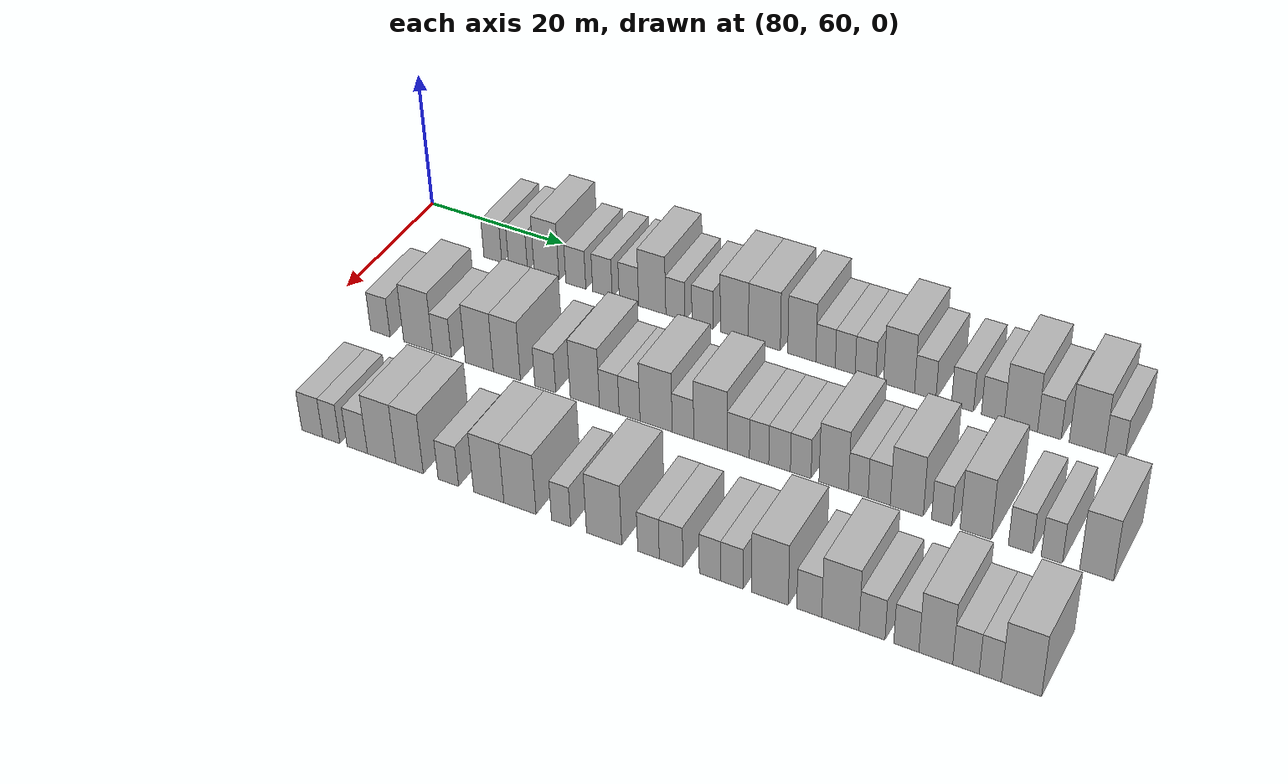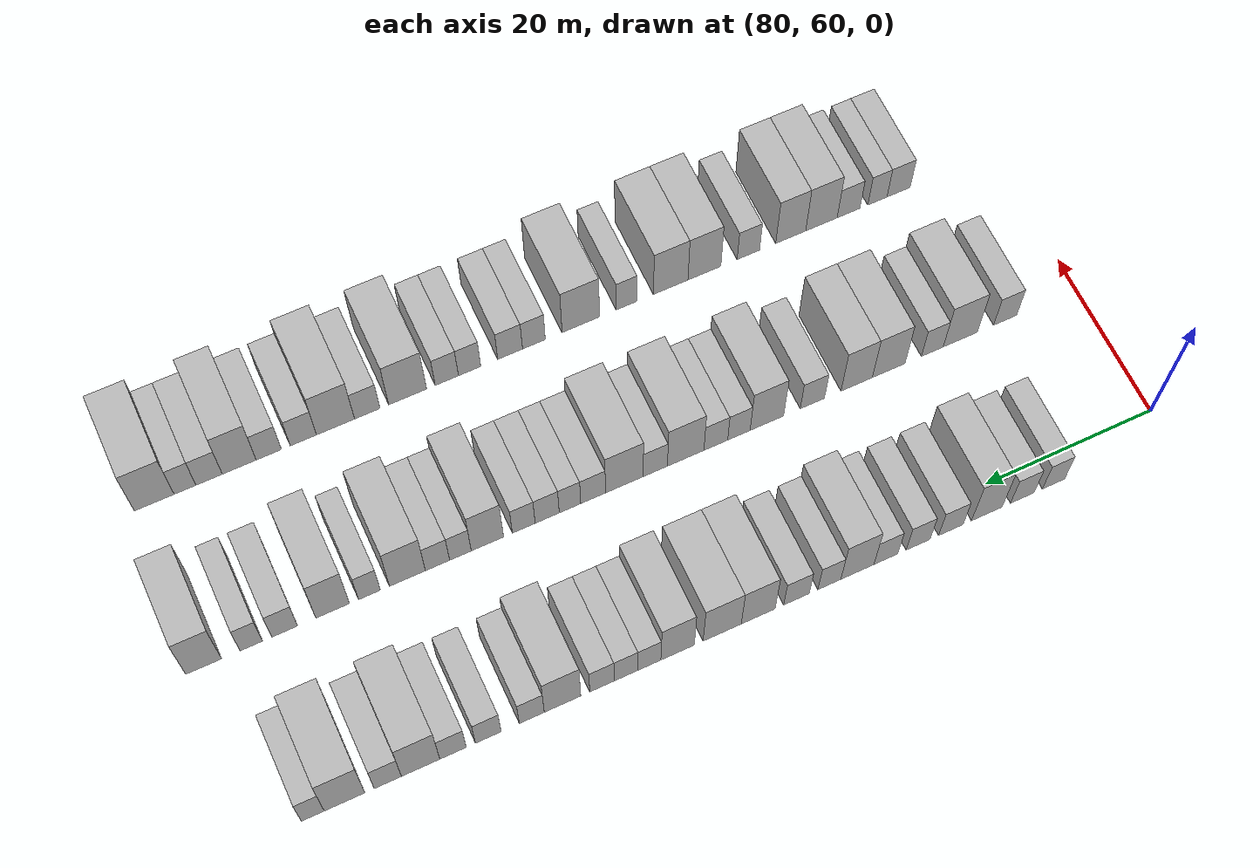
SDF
<sdf version="1.6">
 <world name="default">
  <model name="building_641">
   <static>1</static>
   <pose>82.0000 73.6102 0 0.000000 0.000000 0.000000</pose>
   <link name="link">
    <pose>0 0 3.00 0 0 0</pose>
    <collision name="collision"><geometry><box><size>10.0000 2.6775 6.0000</size></box></geometry></collision>
    <visual name="visual">
     <cast_shadows>0</cast_shadows>
     <geometry><box><size>10.0000 2.6775 6.0000</size></box></geometry>
     <material>
      <script>
       <uri>model://HANNAS_wall/materials/scripts</uri>
       <uri>model://HANNAS_wall/materials/textures</uri>
       <name>vrc/HANNAS_wall</name>
      </script>
     </material>
    </visual>
   </link>
  </model>
  <model name="building_642">
   <static>1</static>
   <pose>82.0000 77.3607 0 0.000000 0.000000 0.000000</pose>
   <link name="link">
    <pose>0 0 3.00 0 0 0</pose>
    <collision name="collision"><geometry><box><size>10.0000 2.8235 6.0000</size></box></geometry></collision>
    <visual name="visual">
     <cast_shadows>0</cast_shadows>
     <geometry><box><size>10.0000 2.8235 6.0000</size></box></geometry>
     <material>
      <script>
       <uri>model://HANNAS_wall/materials/scripts</uri>
       <uri>model://HANNAS_wall/materials/textures</uri>
       <name>vrc/HANNAS_wall</name>
      </script>
     </material>
    </visual>
   </link>
  </model>
  <model name="building_643">
   <static>1</static>
   <pose>82.0000 81.5987 0 0.000000 0.000000 0.000000</pose>
   <link name="link">
    <pose>0 0 4.50 0 0 0</pose>
    <collision name="collision"><geometry><box><size>10.0000 3.6525 9.0000</size></box></geometry></collision>
    <visual name="visual">
     <cast_shadows>0</cast_shadows>
     <geometry><box><size>10.0000 3.6525 9.0000</size></box></geometry>
     <material>
      <script>
       <uri>model://HANNAS_wall/materials/scripts</uri>
       <uri>model://HANNAS_wall/materials/textures</uri>
       <name>vrc/HANNAS_wall</name>
      </script>
     </material>
    </visual>
   </link>
  </model>
  <model name="building_644">
   <static>1</static>
   <pose>82.0000 85.8747 0 0.000000 0.000000 0.000000</pose>
   <link name="link">
    <pose>0 0 3.00 0 0 0</pose>
    <collision name="collision"><geometry><box><size>10.0000 2.8995 6.0000</size></box></geometry></collision>
    <visual name="visual">
     <cast_shadows>0</cast_shadows>
     <geometry><box><size>10.0000 2.8995 6.0000</size></box></geometry>
     <material>
      <script>
       <uri>model://HANNAS_wall/materials/scripts</uri>
       <uri>model://HANNAS_wall/materials/textures</uri>
       <name>vrc/HANNAS_wall</name>
      </script>
     </material>
    </visual>
   </link>
  </model>
  <model name="building_645">
   <static>1</static>
   <pose>82.0000 89.7336 0 0.000000 0.000000 0.000000</pose>
   <link name="link">
    <pose>0 0 3.00 0 0 0</pose>
    <collision name="collision"><geometry><box><size>10.0000 2.8182 6.0000</size></box></geometry></collision>
    <visual name="visual">
     <cast_shadows>0</cast_shadows>
     <geometry><box><size>10.0000 2.8182 6.0000</size></box></geometry>
     <material>
      <script>
       <uri>model://HANNAS_wall/materials/scripts</uri>
       <uri>model://HANNAS_wall/materials/textures</uri>
       <name>vrc/HANNAS_wall</name>
      </script>
     </material>
    </visual>
   </link>
  </model>
  <model name="building_646">
   <static>1</static>
   <pose>82.0000 93.5314 0 0.000000 0.000000 0.000000</pose>
   <link name="link">
    <pose>0 0 3.00 0 0 0</pose>
    <collision name="collision"><geometry><box><size>10.0000 2.7775 6.0000</size></box></geometry></collision>
    <visual name="visual">
     <cast_shadows>0</cast_shadows>
     <geometry><box><size>10.0000 2.7775 6.0000</size></box></geometry>
     <material>
      <script>
       <uri>model://HANNAS_wall/materials/scripts</uri>
       <uri>model://HANNAS_wall/materials/textures</uri>
       <name>vrc/HANNAS_wall</name>
      </script>
     </material>
    </visual>
   </link>
  </model>
  <model name="building_647">
   <static>1</static>
   <pose>82.0000 96.8436 0 0.000000 0.000000 0.000000</pose>
   <link name="link">
    <pose>0 0 4.50 0 0 0</pose>
    <collision name="collision"><geometry><box><size>10.0000 3.8470 9.0000</size></box></geometry></collision>
    <visual name="visual">
     <cast_shadows>0</cast_shadows>
     <geometry><box><size>10.0000 3.8470 9.0000</size></box></geometry>
     <material>
      <script>
       <uri>model://HANNAS_wall/materials/scripts</uri>
       <uri>model://HANNAS_wall/materials/textures</uri>
       <name>vrc/HANNAS_wall</name>
      </script>
     </material>
    </visual>
   </link>
  </model>
  <model name="building_648">
   <static>1</static>
   <pose>82.0000 100.0966 0 0.000000 0.000000 0.000000</pose>
   <link name="link">
    <pose>0 0 3.00 0 0 0</pose>
    <collision name="collision"><geometry><box><size>10.0000 2.6588 6.0000</size></box></geometry></collision>
    <visual name="visual">
     <cast_shadows>0</cast_shadows>
     <geometry><box><size>10.0000 2.6588 6.0000</size></box></geometry>
     <material>
      <script>
       <uri>model://HANNAS_wall/materials/scripts</uri>
       <uri>model://HANNAS_wall/materials/textures</uri>
       <name>vrc/HANNAS_wall</name>
      </script>
     </material>
    </visual>
   </link>
  </model>
  <model name="building_649">
   <static>1</static>
   <pose>82.0000 103.8937 0 0.000000 0.000000 0.000000</pose>
   <link name="link">
    <pose>0 0 3.00 0 0 0</pose>
    <collision name="collision"><geometry><box><size>10.0000 2.9354 6.0000</size></box></geometry></collision>
    <visual name="visual">
     <cast_shadows>0</cast_shadows>
     <geometry><box><size>10.0000 2.9354 6.0000</size></box></geometry>
     <material>
      <script>
       <uri>model://HANNAS_wall/materials/scripts</uri>
       <uri>model://HANNAS_wall/materials/textures</uri>
       <name>vrc/HANNAS_wall</name>
      </script>
     </material>
    </visual>
   </link>
  </model>
  <model name="building_650">
   <static>1</static>
   <pose>82.0000 108.2940 0 0.000000 0.000000 0.000000</pose>
   <link name="link">
    <pose>0 0 4.50 0 0 0</pose>
    <collision name="collision"><geometry><box><size>10.0000 3.8652 9.0000</size></box></geometry></collision>
    <visual name="visual">
     <cast_shadows>0</cast_shadows>
     <geometry><box><size>10.0000 3.8652 9.0000</size></box></geometry>
     <material>
      <script>
       <uri>model://HANNAS_wall/materials/scripts</uri>
       <uri>model://HANNAS_wall/materials/textures</uri>
       <name>vrc/HANNAS_wall</name>
      </script>
     </material>
    </visual>
   </link>
  </model>
  <model name="building_651">
   <static>1</static>
   <pose>82.0000 112.3958 0 0.000000 0.000000 0.000000</pose>
   <link name="link">
    <pose>0 0 4.50 0 0 0</pose>
    <collision name="collision"><geometry><box><size>10.0000 4.3384 9.0000</size></box></geometry></collision>
    <visual name="visual">
     <cast_shadows>0</cast_shadows>
     <geometry><box><size>10.0000 4.3384 9.0000</size></box></geometry>
     <material>
      <script>
       <uri>model://HANNAS_wall/materials/scripts</uri>
       <uri>model://HANNAS_wall/materials/textures</uri>
       <name>vrc/HANNAS_wall</name>
      </script>
     </material>
    </visual>
   </link>
  </model>
  <model name="building_652">
   <static>1</static>
   <pose>82.0000 117.4512 0 0.000000 0.000000 0.000000</pose>
   <link name="link">
    <pose>0 0 4.50 0 0 0</pose>
    <collision name="collision"><geometry><box><size>10.0000 3.7724 9.0000</size></box></geometry></collision>
    <visual name="visual">
     <cast_shadows>0</cast_shadows>
     <geometry><box><size>10.0000 3.7724 9.0000</size></box></geometry>
     <material>
      <script>
       <uri>model://HANNAS_wall/materials/scripts</uri>
       <uri>model://HANNAS_wall/materials/textures</uri>
       <name>vrc/HANNAS_wall</name>
      </script>
     </material>
    </visual>
   </link>
  </model>
  <model name="building_653">
   <static>1</static>
   <pose>82.0000 120.6307 0 0.000000 0.000000 0.000000</pose>
   <link name="link">
    <pose>0 0 3.00 0 0 0</pose>
    <collision name="collision"><geometry><box><size>10.0000 2.5866 6.0000</size></box></geometry></collision>
    <visual name="visual">
     <cast_shadows>0</cast_shadows>
     <geometry><box><size>10.0000 2.5866 6.0000</size></box></geometry>
     <material>
      <script>
       <uri>model://HANNAS_wall/materials/scripts</uri>
       <uri>model://HANNAS_wall/materials/textures</uri>
       <name>vrc/HANNAS_wall</name>
      </script>
     </material>
    </visual>
   </link>
  </model>
  <model name="building_654">
   <static>1</static>
   <pose>82.0000 123.2401 0 0.000000 0.000000 0.000000</pose>
   <link name="link">
    <pose>0 0 3.00 0 0 0</pose>
    <collision name="collision"><geometry><box><size>10.0000 2.6322 6.0000</size></box></geometry></collision>
    <visual name="visual">
     <cast_shadows>0</cast_shadows>
     <geometry><box><size>10.0000 2.6322 6.0000</size></box></geometry>
     <material>
      <script>
       <uri>model://HANNAS_wall/materials/scripts</uri>
       <uri>model://HANNAS_wall/materials/textures</uri>
       <name>vrc/HANNAS_wall</name>
      </script>
     </material>
    </visual>
   </link>
  </model>
  <model name="building_655">
   <static>1</static>
   <pose>82.0000 125.9217 0 0.000000 0.000000 0.000000</pose>
   <link name="link">
    <pose>0 0 3.00 0 0 0</pose>
    <collision name="collision"><geometry><box><size>10.0000 2.7310 6.0000</size></box></geometry></collision>
    <visual name="visual">
     <cast_shadows>0</cast_shadows>
     <geometry><box><size>10.0000 2.7310 6.0000</size></box></geometry>
     <material>
      <script>
       <uri>model://HANNAS_wall/materials/scripts</uri>
       <uri>model://HANNAS_wall/materials/textures</uri>
       <name>vrc/HANNAS_wall</name>
      </script>
     </material>
    </visual>
   </link>
  </model>
  <model name="building_656">
   <static>1</static>
   <pose>82.0000 130.3047 0 0.000000 0.000000 0.000000</pose>
   <link name="link">
    <pose>0 0 4.50 0 0 0</pose>
    <collision name="collision"><geometry><box><size>10.0000 4.0351 9.0000</size></box></geometry></collision>
    <visual name="visual">
     <cast_shadows>0</cast_shadows>
     <geometry><box><size>10.0000 4.0351 9.0000</size></box></geometry>
     <material>
      <script>
       <uri>model://HANNAS_wall/materials/scripts</uri>
       <uri>model://HANNAS_wall/materials/textures</uri>
       <name>vrc/HANNAS_wall</name>
      </script>
     </material>
    </visual>
   </link>
  </model>
  <model name="building_657">
   <static>1</static>
   <pose>82.0000 133.6952 0 0.000000 0.000000 0.000000</pose>
   <link name="link">
    <pose>0 0 3.00 0 0 0</pose>
    <collision name="collision"><geometry><box><size>10.0000 2.7457 6.0000</size></box></geometry></collision>
    <visual name="visual">
     <cast_shadows>0</cast_shadows>
     <geometry><box><size>10.0000 2.7457 6.0000</size></box></geometry>
     <material>
      <script>
       <uri>model://HANNAS_wall/materials/scripts</uri>
       <uri>model://HANNAS_wall/materials/textures</uri>
       <name>vrc/HANNAS_wall</name>
      </script>
     </material>
    </visual>
   </link>
  </model>
  <model name="building_658">
   <static>1</static>
   <pose>82.0000 138.4695 0 0.000000 0.000000 0.000000</pose>
   <link name="link">
    <pose>0 0 3.00 0 0 0</pose>
    <collision name="collision"><geometry><box><size>10.0000 2.8030 6.0000</size></box></geometry></collision>
    <visual name="visual">
     <cast_shadows>0</cast_shadows>
     <geometry><box><size>10.0000 2.8030 6.0000</size></box></geometry>
     <material>
      <script>
       <uri>model://HANNAS_wall/materials/scripts</uri>
       <uri>model://HANNAS_wall/materials/textures</uri>
       <name>vrc/HANNAS_wall</name>
      </script>
     </material>
    </visual>
   </link>
  </model>
  <model name="building_659">
   <static>1</static>
   <pose>82.0000 142.3086 0 0.000000 0.000000 0.000000</pose>
   <link name="link">
    <pose>0 0 3.00 0 0 0</pose>
    <collision name="collision"><geometry><box><size>10.0000 2.8752 6.0000</size></box></geometry></collision>
    <visual name="visual">
     <cast_shadows>0</cast_shadows>
     <geometry><box><size>10.0000 2.8752 6.0000</size></box></geometry>
     <material>
      <script>
       <uri>model://HANNAS_wall/materials/scripts</uri>
       <uri>model://HANNAS_wall/materials/textures</uri>
       <name>vrc/HANNAS_wall</name>
      </script>
     </material>
    </visual>
   </link>
  </model>
  <model name="building_660">
   <static>1</static>
   <pose>82.0000 145.8226 0 0.000000 0.000000 0.000000</pose>
   <link name="link">
    <pose>0 0 4.50 0 0 0</pose>
    <collision name="collision"><geometry><box><size>10.0000 4.1527 9.0000</size></box></geometry></collision>
    <visual name="visual">
     <cast_shadows>0</cast_shadows>
     <geometry><box><size>10.0000 4.1527 9.0000</size></box></geometry>
     <material>
      <script>
       <uri>model://HANNAS_wall/materials/scripts</uri>
       <uri>model://HANNAS_wall/materials/textures</uri>
       <name>vrc/HANNAS_wall</name>
      </script>
     </material>
    </visual>
   </link>
  </model>
  <model name="building_661">
   <static>1</static>
   <pose>82.0000 149.3579 0 0.000000 0.000000 0.000000</pose>
   <link name="link">
    <pose>0 0 3.00 0 0 0</pose>
    <collision name="collision"><geometry><box><size>10.0000 2.9180 6.0000</size></box></geometry></collision>
    <visual name="visual">
     <cast_shadows>0</cast_shadows>
     <geometry><box><size>10.0000 2.9180 6.0000</size></box></geometry>
     <material>
      <script>
       <uri>model://HANNAS_wall/materials/scripts</uri>
       <uri>model://HANNAS_wall/materials/textures</uri>
       <name>vrc/HANNAS_wall</name>
      </script>
     </material>
    </visual>
   </link>
  </model>
  <model name="building_662">
   <static>1</static>
   <pose>82.0000 153.9848 0 0.000000 0.000000 0.000000</pose>
   <link name="link">
    <pose>0 0 4.50 0 0 0</pose>
    <collision name="collision"><geometry><box><size>10.0000 4.3357 9.0000</size></box></geometry></collision>
    <visual name="visual">
     <cast_shadows>0</cast_shadows>
     <geometry><box><size>10.0000 4.3357 9.0000</size></box></geometry>
     <material>
      <script>
       <uri>model://HANNAS_wall/materials/scripts</uri>
       <uri>model://HANNAS_wall/materials/textures</uri>
       <name>vrc/HANNAS_wall</name>
      </script>
     </material>
    </visual>
   </link>
  </model>
  <model name="building_663">
   <static>1</static>
   <pose>82.0000 157.3664 0 0.000000 0.000000 0.000000</pose>
   <link name="link">
    <pose>0 0 3.00 0 0 0</pose>
    <collision name="collision"><geometry><box><size>10.0000 2.4275 6.0000</size></box></geometry></collision>
    <visual name="visual">
     <cast_shadows>0</cast_shadows>
     <geometry><box><size>10.0000 2.4275 6.0000</size></box></geometry>
     <material>
      <script>
       <uri>model://HANNAS_wall/materials/scripts</uri>
       <uri>model://HANNAS_wall/materials/textures</uri>
       <name>vrc/HANNAS_wall</name>
      </script>
     </material>
    </visual>
   </link>
  </model>
  <model name="building_814">
   <static>1</static>
   <pose>101.0000 68.9157 0 0.000000 0.000000 0.000000</pose>
   <link name="link">
    <pose>0 0 3.00 0 0 0</pose>
    <collision name="collision"><geometry><box><size>10.0000 2.8502 6.0000</size></box></geometry></collision>
    <visual name="visual">
     <cast_shadows>0</cast_shadows>
     <geometry><box><size>10.0000 2.8502 6.0000</size></box></geometry>
     <material>
      <script>
       <uri>model://HANNAS_wall/materials/scripts</uri>
       <uri>model://HANNAS_wall/materials/textures</uri>
       <name>vrc/HANNAS_wall</name>
      </script>
     </material>
    </visual>
   </link>
  </model>
  <model name="building_815">
   <static>1</static>
   <pose>101.0000 74.4452 0 0.000000 0.000000 0.000000</pose>
   <link name="link">
    <pose>0 0 4.50 0 0 0</pose>
    <collision name="collision"><geometry><box><size>10.0000 4.2087 9.0000</size></box></geometry></collision>
    <visual name="visual">
     <cast_shadows>0</cast_shadows>
     <geometry><box><size>10.0000 4.2087 9.0000</size></box></geometry>
     <material>
      <script>
       <uri>model://HANNAS_wall/materials/scripts</uri>
       <uri>model://HANNAS_wall/materials/textures</uri>
       <name>vrc/HANNAS_wall</name>
      </script>
     </material>
    </visual>
   </link>
  </model>
  <model name="building_816">
   <static>1</static>
   <pose>101.0000 77.8859 0 0.000000 0.000000 0.000000</pose>
   <link name="link">
    <pose>0 0 3.00 0 0 0</pose>
    <collision name="collision"><geometry><box><size>10.0000 2.6728 6.0000</size></box></geometry></collision>
    <visual name="visual">
     <cast_shadows>0</cast_shadows>
     <geometry><box><size>10.0000 2.6728 6.0000</size></box></geometry>
     <material>
      <script>
       <uri>model://HANNAS_wall/materials/scripts</uri>
       <uri>model://HANNAS_wall/materials/textures</uri>
       <name>vrc/HANNAS_wall</name>
      </script>
     </material>
    </visual>
   </link>
  </model>
  <model name="building_817">
   <static>1</static>
   <pose>101.0000 83.2044 0 0.000000 0.000000 0.000000</pose>
   <link name="link">
    <pose>0 0 4.50 0 0 0</pose>
    <collision name="collision"><geometry><box><size>10.0000 3.9642 9.0000</size></box></geometry></collision>
    <visual name="visual">
     <cast_shadows>0</cast_shadows>
     <geometry><box><size>10.0000 3.9642 9.0000</size></box></geometry>
     <material>
      <script>
       <uri>model://HANNAS_wall/materials/scripts</uri>
       <uri>model://HANNAS_wall/materials/textures</uri>
       <name>vrc/HANNAS_wall</name>
      </script>
     </material>
    </visual>
   </link>
  </model>
  <model name="building_818">
   <static>1</static>
   <pose>101.0000 87.0795 0 0.000000 0.000000 0.000000</pose>
   <link name="link">
    <pose>0 0 4.50 0 0 0</pose>
    <collision name="collision"><geometry><box><size>10.0000 3.7862 9.0000</size></box></geometry></collision>
    <visual name="visual">
     <cast_shadows>0</cast_shadows>
     <geometry><box><size>10.0000 3.7862 9.0000</size></box></geometry>
     <material>
      <script>
       <uri>model://HANNAS_wall/materials/scripts</uri>
       <uri>model://HANNAS_wall/materials/textures</uri>
       <name>vrc/HANNAS_wall</name>
      </script>
     </material>
    </visual>
   </link>
  </model>
  <model name="building_819">
   <static>1</static>
   <pose>101.0000 92.4197 0 0.000000 0.000000 0.000000</pose>
   <link name="link">
    <pose>0 0 3.00 0 0 0</pose>
    <collision name="collision"><geometry><box><size>10.0000 2.8941 6.0000</size></box></geometry></collision>
    <visual name="visual">
     <cast_shadows>0</cast_shadows>
     <geometry><box><size>10.0000 2.8941 6.0000</size></box></geometry>
     <material>
      <script>
       <uri>model://HANNAS_wall/materials/scripts</uri>
       <uri>model://HANNAS_wall/materials/textures</uri>
       <name>vrc/HANNAS_wall</name>
      </script>
     </material>
    </visual>
   </link>
  </model>
  <model name="building_820">
   <static>1</static>
   <pose>101.0000 97.8585 0 0.000000 0.000000 0.000000</pose>
   <link name="link">
    <pose>0 0 4.50 0 0 0</pose>
    <collision name="collision"><geometry><box><size>10.0000 3.9836 9.0000</size></box></geometry></collision>
    <visual name="visual">
     <cast_shadows>0</cast_shadows>
     <geometry><box><size>10.0000 3.9836 9.0000</size></box></geometry>
     <material>
      <script>
       <uri>model://HANNAS_wall/materials/scripts</uri>
       <uri>model://HANNAS_wall/materials/textures</uri>
       <name>vrc/HANNAS_wall</name>
      </script>
     </material>
    </visual>
   </link>
  </model>
  <model name="building_821">
   <static>1</static>
   <pose>101.0000 101.1721 0 0.000000 0.000000 0.000000</pose>
   <link name="link">
    <pose>0 0 3.00 0 0 0</pose>
    <collision name="collision"><geometry><box><size>10.0000 2.6436 6.0000</size></box></geometry></collision>
    <visual name="visual">
     <cast_shadows>0</cast_shadows>
     <geometry><box><size>10.0000 2.6436 6.0000</size></box></geometry>
     <material>
      <script>
       <uri>model://HANNAS_wall/materials/scripts</uri>
       <uri>model://HANNAS_wall/materials/textures</uri>
       <name>vrc/HANNAS_wall</name>
      </script>
     </material>
    </visual>
   </link>
  </model>
  <model name="building_822">
   <static>1</static>
   <pose>101.0000 103.8974 0 0.000000 0.000000 0.000000</pose>
   <link name="link">
    <pose>0 0 3.00 0 0 0</pose>
    <collision name="collision"><geometry><box><size>10.0000 2.8071 6.0000</size></box></geometry></collision>
    <visual name="visual">
     <cast_shadows>0</cast_shadows>
     <geometry><box><size>10.0000 2.8071 6.0000</size></box></geometry>
     <material>
      <script>
       <uri>model://HANNAS_wall/materials/scripts</uri>
       <uri>model://HANNAS_wall/materials/textures</uri>
       <name>vrc/HANNAS_wall</name>
      </script>
     </material>
    </visual>
   </link>
  </model>
  <model name="building_823">
   <static>1</static>
   <pose>101.0000 107.4404 0 0.000000 0.000000 0.000000</pose>
   <link name="link">
    <pose>0 0 4.50 0 0 0</pose>
    <collision name="collision"><geometry><box><size>10.0000 4.2789 9.0000</size></box></geometry></collision>
    <visual name="visual">
     <cast_shadows>0</cast_shadows>
     <geometry><box><size>10.0000 4.2789 9.0000</size></box></geometry>
     <material>
      <script>
       <uri>model://HANNAS_wall/materials/scripts</uri>
       <uri>model://HANNAS_wall/materials/textures</uri>
       <name>vrc/HANNAS_wall</name>
      </script>
     </material>
    </visual>
   </link>
  </model>
  <model name="building_824">
   <static>1</static>
   <pose>101.0000 110.9958 0 0.000000 0.000000 0.000000</pose>
   <link name="link">
    <pose>0 0 3.00 0 0 0</pose>
    <collision name="collision"><geometry><box><size>10.0000 2.8319 6.0000</size></box></geometry></collision>
    <visual name="visual">
     <cast_shadows>0</cast_shadows>
     <geometry><box><size>10.0000 2.8319 6.0000</size></box></geometry>
     <material>
      <script>
       <uri>model://HANNAS_wall/materials/scripts</uri>
       <uri>model://HANNAS_wall/materials/textures</uri>
       <name>vrc/HANNAS_wall</name>
      </script>
     </material>
    </visual>
   </link>
  </model>
  <model name="building_825">
   <static>1</static>
   <pose>101.0000 114.5884 0 0.000000 0.000000 0.000000</pose>
   <link name="link">
    <pose>0 0 4.50 0 0 0</pose>
    <collision name="collision"><geometry><box><size>10.0000 4.3533 9.0000</size></box></geometry></collision>
    <visual name="visual">
     <cast_shadows>0</cast_shadows>
     <geometry><box><size>10.0000 4.3533 9.0000</size></box></geometry>
     <material>
      <script>
       <uri>model://HANNAS_wall/materials/scripts</uri>
       <uri>model://HANNAS_wall/materials/textures</uri>
       <name>vrc/HANNAS_wall</name>
      </script>
     </material>
    </visual>
   </link>
  </model>
  <model name="building_826">
   <static>1</static>
   <pose>101.0000 118.1996 0 0.000000 0.000000 0.000000</pose>
   <link name="link">
    <pose>0 0 3.00 0 0 0</pose>
    <collision name="collision"><geometry><box><size>10.0000 2.8692 6.0000</size></box></geometry></collision>
    <visual name="visual">
     <cast_shadows>0</cast_shadows>
     <geometry><box><size>10.0000 2.8692 6.0000</size></box></geometry>
     <material>
      <script>
       <uri>model://HANNAS_wall/materials/scripts</uri>
       <uri>model://HANNAS_wall/materials/textures</uri>
       <name>vrc/HANNAS_wall</name>
      </script>
     </material>
    </visual>
   </link>
  </model>
  <model name="building_827">
   <static>1</static>
   <pose>101.0000 120.8691 0 0.000000 0.000000 0.000000</pose>
   <link name="link">
    <pose>0 0 3.00 0 0 0</pose>
    <collision name="collision"><geometry><box><size>10.0000 2.4698 6.0000</size></box></geometry></collision>
    <visual name="visual">
     <cast_shadows>0</cast_shadows>
     <geometry><box><size>10.0000 2.4698 6.0000</size></box></geometry>
     <material>
      <script>
       <uri>model://HANNAS_wall/materials/scripts</uri>
       <uri>model://HANNAS_wall/materials/textures</uri>
       <name>vrc/HANNAS_wall</name>
      </script>
     </material>
    </visual>
   </link>
  </model>
  <model name="building_828">
   <static>1</static>
   <pose>101.0000 123.4824 0 0.000000 0.000000 0.000000</pose>
   <link name="link">
    <pose>0 0 3.00 0 0 0</pose>
    <collision name="collision"><geometry><box><size>10.0000 2.7567 6.0000</size></box></geometry></collision>
    <visual name="visual">
     <cast_shadows>0</cast_shadows>
     <geometry><box><size>10.0000 2.7567 6.0000</size></box></geometry>
     <material>
      <script>
       <uri>model://HANNAS_wall/materials/scripts</uri>
       <uri>model://HANNAS_wall/materials/textures</uri>
       <name>vrc/HANNAS_wall</name>
      </script>
     </material>
    </visual>
   </link>
  </model>
  <model name="building_829">
   <static>1</static>
   <pose>101.0000 126.1614 0 0.000000 0.000000 0.000000</pose>
   <link name="link">
    <pose>0 0 3.00 0 0 0</pose>
    <collision name="collision"><geometry><box><size>10.0000 2.6012 6.0000</size></box></geometry></collision>
    <visual name="visual">
     <cast_shadows>0</cast_shadows>
     <geometry><box><size>10.0000 2.6012 6.0000</size></box></geometry>
     <material>
      <script>
       <uri>model://HANNAS_wall/materials/scripts</uri>
       <uri>model://HANNAS_wall/materials/textures</uri>
       <name>vrc/HANNAS_wall</name>
      </script>
     </material>
    </visual>
   </link>
  </model>
  <model name="building_830">
   <static>1</static>
   <pose>101.0000 130.2929 0 0.000000 0.000000 0.000000</pose>
   <link name="link">
    <pose>0 0 4.50 0 0 0</pose>
    <collision name="collision"><geometry><box><size>10.0000 3.6618 9.0000</size></box></geometry></collision>
    <visual name="visual">
     <cast_shadows>0</cast_shadows>
     <geometry><box><size>10.0000 3.6618 9.0000</size></box></geometry>
     <material>
      <script>
       <uri>model://HANNAS_wall/materials/scripts</uri>
       <uri>model://HANNAS_wall/materials/textures</uri>
       <name>vrc/HANNAS_wall</name>
      </script>
     </material>
    </visual>
   </link>
  </model>
  <model name="building_831">
   <static>1</static>
   <pose>101.0000 133.3453 0 0.000000 0.000000 0.000000</pose>
   <link name="link">
    <pose>0 0 3.00 0 0 0</pose>
    <collision name="collision"><geometry><box><size>10.0000 2.4430 6.0000</size></box></geometry></collision>
    <visual name="visual">
     <cast_shadows>0</cast_shadows>
     <geometry><box><size>10.0000 2.4430 6.0000</size></box></geometry>
     <material>
      <script>
       <uri>model://HANNAS_wall/materials/scripts</uri>
       <uri>model://HANNAS_wall/materials/textures</uri>
       <name>vrc/HANNAS_wall</name>
      </script>
     </material>
    </visual>
   </link>
  </model>
  <model name="building_832">
   <static>1</static>
   <pose>101.0000 135.9301 0 0.000000 0.000000 0.000000</pose>
   <link name="link">
    <pose>0 0 3.00 0 0 0</pose>
    <collision name="collision"><geometry><box><size>10.0000 2.7266 6.0000</size></box></geometry></collision>
    <visual name="visual">
     <cast_shadows>0</cast_shadows>
     <geometry><box><size>10.0000 2.7266 6.0000</size></box></geometry>
     <material>
      <script>
       <uri>model://HANNAS_wall/materials/scripts</uri>
       <uri>model://HANNAS_wall/materials/textures</uri>
       <name>vrc/HANNAS_wall</name>
      </script>
     </material>
    </visual>
   </link>
  </model>
  <model name="building_833">
   <static>1</static>
   <pose>101.0000 139.3059 0 0.000000 0.000000 0.000000</pose>
   <link name="link">
    <pose>0 0 4.50 0 0 0</pose>
    <collision name="collision"><geometry><box><size>10.0000 4.0250 9.0000</size></box></geometry></collision>
    <visual name="visual">
     <cast_shadows>0</cast_shadows>
     <geometry><box><size>10.0000 4.0250 9.0000</size></box></geometry>
     <material>
      <script>
       <uri>model://HANNAS_wall/materials/scripts</uri>
       <uri>model://HANNAS_wall/materials/textures</uri>
       <name>vrc/HANNAS_wall</name>
      </script>
     </material>
    </visual>
   </link>
  </model>
  <model name="building_834">
   <static>1</static>
   <pose>101.0000 143.5364 0 0.000000 0.000000 0.000000</pose>
   <link name="link">
    <pose>0 0 3.00 0 0 0</pose>
    <collision name="collision"><geometry><box><size>10.0000 2.4361 6.0000</size></box></geometry></collision>
    <visual name="visual">
     <cast_shadows>0</cast_shadows>
     <geometry><box><size>10.0000 2.4361 6.0000</size></box></geometry>
     <material>
      <script>
       <uri>model://HANNAS_wall/materials/scripts</uri>
       <uri>model://HANNAS_wall/materials/textures</uri>
       <name>vrc/HANNAS_wall</name>
      </script>
     </material>
    </visual>
   </link>
  </model>
  <model name="building_835">
   <static>1</static>
   <pose>101.0000 147.6164 0 0.000000 0.000000 0.000000</pose>
   <link name="link">
    <pose>0 0 4.50 0 0 0</pose>
    <collision name="collision"><geometry><box><size>10.0000 3.7240 9.0000</size></box></geometry></collision>
    <visual name="visual">
     <cast_shadows>0</cast_shadows>
     <geometry><box><size>10.0000 3.7240 9.0000</size></box></geometry>
     <material>
      <script>
       <uri>model://HANNAS_wall/materials/scripts</uri>
       <uri>model://HANNAS_wall/materials/textures</uri>
       <name>vrc/HANNAS_wall</name>
      </script>
     </material>
    </visual>
   </link>
  </model>
  <model name="building_836">
   <static>1</static>
   <pose>101.0000 152.8971 0 0.000000 0.000000 0.000000</pose>
   <link name="link">
    <pose>0 0 3.00 0 0 0</pose>
    <collision name="collision"><geometry><box><size>10.0000 2.8374 6.0000</size></box></geometry></collision>
    <visual name="visual">
     <cast_shadows>0</cast_shadows>
     <geometry><box><size>10.0000 2.8374 6.0000</size></box></geometry>
     <material>
      <script>
       <uri>model://HANNAS_wall/materials/scripts</uri>
       <uri>model://HANNAS_wall/materials/textures</uri>
       <name>vrc/HANNAS_wall</name>
      </script>
     </material>
    </visual>
   </link>
  </model>
  <model name="building_837">
   <static>1</static>
   <pose>101.0000 156.5470 0 0.000000 0.000000 0.000000</pose>
   <link name="link">
    <pose>0 0 3.00 0 0 0</pose>
    <collision name="collision"><geometry><box><size>10.0000 2.4623 6.0000</size></box></geometry></collision>
    <visual name="visual">
     <cast_shadows>0</cast_shadows>
     <geometry><box><size>10.0000 2.4623 6.0000</size></box></geometry>
     <material>
      <script>
       <uri>model://HANNAS_wall/materials/scripts</uri>
       <uri>model://HANNAS_wall/materials/textures</uri>
       <name>vrc/HANNAS_wall</name>
      </script>
     </material>
    </visual>
   </link>
  </model>
  <model name="building_838">
   <static>1</static>
   <pose>101.0000 161.7183 0 0.000000 0.000000 0.000000</pose>
   <link name="link">
    <pose>0 0 4.50 0 0 0</pose>
    <collision name="collision"><geometry><box><size>10.0000 3.8804 9.0000</size></box></geometry></collision>
    <visual name="visual">
     <cast_shadows>0</cast_shadows>
     <geometry><box><size>10.0000 3.8804 9.0000</size></box></geometry>
     <material>
      <script>
       <uri>model://HANNAS_wall/materials/scripts</uri>
       <uri>model://HANNAS_wall/materials/textures</uri>
       <name>vrc/HANNAS_wall</name>
      </script>
     </material>
    </visual>
   </link>
  </model>
  <model name="building_994">
   <static>1</static>
   <pose>120.0000 71.9864 0 0.000000 0.000000 0.000000</pose>
   <link name="link">
    <pose>0 0 3.00 0 0 0</pose>
    <collision name="collision"><geometry><box><size>10.0000 2.9229 6.0000</size></box></geometry></collision>
    <visual name="visual">
     <cast_shadows>0</cast_shadows>
     <geometry><box><size>10.0000 2.9229 6.0000</size></box></geometry>
     <material>
      <script>
       <uri>model://HANNAS_wall/materials/scripts</uri>
       <uri>model://HANNAS_wall/materials/textures</uri>
       <name>vrc/HANNAS_wall</name>
      </script>
     </material>
    </visual>
   </link>
  </model>
  <model name="building_995">
   <static>1</static>
   <pose>120.0000 74.6495 0 0.000000 0.000000 0.000000</pose>
   <link name="link">
    <pose>0 0 3.00 0 0 0</pose>
    <collision name="collision"><geometry><box><size>10.0000 2.4033 6.0000</size></box></geometry></collision>
    <visual name="visual">
     <cast_shadows>0</cast_shadows>
     <geometry><box><size>10.0000 2.4033 6.0000</size></box></geometry>
     <material>
      <script>
       <uri>model://HANNAS_wall/materials/scripts</uri>
       <uri>model://HANNAS_wall/materials/textures</uri>
       <name>vrc/HANNAS_wall</name>
      </script>
     </material>
    </visual>
   </link>
  </model>
  <model name="building_996">
   <static>1</static>
   <pose>120.0000 78.2678 0 0.000000 0.000000 0.000000</pose>
   <link name="link">
    <pose>0 0 3.00 0 0 0</pose>
    <collision name="collision"><geometry><box><size>10.0000 2.8333 6.0000</size></box></geometry></collision>
    <visual name="visual">
     <cast_shadows>0</cast_shadows>
     <geometry><box><size>10.0000 2.8333 6.0000</size></box></geometry>
     <material>
      <script>
       <uri>model://HANNAS_wall/materials/scripts</uri>
       <uri>model://HANNAS_wall/materials/textures</uri>
       <name>vrc/HANNAS_wall</name>
      </script>
     </material>
    </visual>
   </link>
  </model>
  <model name="building_997">
   <static>1</static>
   <pose>120.0000 81.6418 0 0.000000 0.000000 0.000000</pose>
   <link name="link">
    <pose>0 0 4.50 0 0 0</pose>
    <collision name="collision"><geometry><box><size>10.0000 3.9147 9.0000</size></box></geometry></collision>
    <visual name="visual">
     <cast_shadows>0</cast_shadows>
     <geometry><box><size>10.0000 3.9147 9.0000</size></box></geometry>
     <material>
      <script>
       <uri>model://HANNAS_wall/materials/scripts</uri>
       <uri>model://HANNAS_wall/materials/textures</uri>
       <name>vrc/HANNAS_wall</name>
      </script>
     </material>
    </visual>
   </link>
  </model>
  <model name="building_998">
   <static>1</static>
   <pose>120.0000 85.4542 0 0.000000 0.000000 0.000000</pose>
   <link name="link">
    <pose>0 0 4.50 0 0 0</pose>
    <collision name="collision"><geometry><box><size>10.0000 3.7101 9.0000</size></box></geometry></collision>
    <visual name="visual">
     <cast_shadows>0</cast_shadows>
     <geometry><box><size>10.0000 3.7101 9.0000</size></box></geometry>
     <material>
      <script>
       <uri>model://HANNAS_wall/materials/scripts</uri>
       <uri>model://HANNAS_wall/materials/textures</uri>
       <name>vrc/HANNAS_wall</name>
      </script>
     </material>
    </visual>
   </link>
  </model>
  <model name="building_999">
   <static>1</static>
   <pose>120.0000 90.6810 0 0.000000 0.000000 0.000000</pose>
   <link name="link">
    <pose>0 0 3.00 0 0 0</pose>
    <collision name="collision"><geometry><box><size>10.0000 2.7436 6.0000</size></box></geometry></collision>
    <visual name="visual">
     <cast_shadows>0</cast_shadows>
     <geometry><box><size>10.0000 2.7436 6.0000</size></box></geometry>
     <material>
      <script>
       <uri>model://HANNAS_wall/materials/scripts</uri>
       <uri>model://HANNAS_wall/materials/textures</uri>
       <name>vrc/HANNAS_wall</name>
      </script>
     </material>
    </visual>
   </link>
  </model>
  <model name="building_1000">
   <static>1</static>
   <pose>120.0000 96.0566 0 0.000000 0.000000 0.000000</pose>
   <link name="link">
    <pose>0 0 4.50 0 0 0</pose>
    <collision name="collision"><geometry><box><size>10.0000 4.0077 9.0000</size></box></geometry></collision>
    <visual name="visual">
     <cast_shadows>0</cast_shadows>
     <geometry><box><size>10.0000 4.0077 9.0000</size></box></geometry>
     <material>
      <script>
       <uri>model://HANNAS_wall/materials/scripts</uri>
       <uri>model://HANNAS_wall/materials/textures</uri>
       <name>vrc/HANNAS_wall</name>
      </script>
     </material>
    </visual>
   </link>
  </model>
  <model name="building_1001">
   <static>1</static>
   <pose>120.0000 100.1544 0 0.000000 0.000000 0.000000</pose>
   <link name="link">
    <pose>0 0 4.50 0 0 0</pose>
    <collision name="collision"><geometry><box><size>10.0000 4.1878 9.0000</size></box></geometry></collision>
    <visual name="visual">
     <cast_shadows>0</cast_shadows>
     <geometry><box><size>10.0000 4.1878 9.0000</size></box></geometry>
     <material>
      <script>
       <uri>model://HANNAS_wall/materials/scripts</uri>
       <uri>model://HANNAS_wall/materials/textures</uri>
       <name>vrc/HANNAS_wall</name>
      </script>
     </material>
    </visual>
   </link>
  </model>
  <model name="building_1002">
   <static>1</static>
   <pose>120.0000 105.4888 0 0.000000 0.000000 0.000000</pose>
   <link name="link">
    <pose>0 0 3.00 0 0 0</pose>
    <collision name="collision"><geometry><box><size>10.0000 2.4811 6.0000</size></box></geometry></collision>
    <visual name="visual">
     <cast_shadows>0</cast_shadows>
     <geometry><box><size>10.0000 2.4811 6.0000</size></box></geometry>
     <material>
      <script>
       <uri>model://HANNAS_wall/materials/scripts</uri>
       <uri>model://HANNAS_wall/materials/textures</uri>
       <name>vrc/HANNAS_wall</name>
      </script>
     </material>
    </visual>
   </link>
  </model>
  <model name="building_1003">
   <static>1</static>
   <pose>120.0000 110.9641 0 0.000000 0.000000 0.000000</pose>
   <link name="link">
    <pose>0 0 4.50 0 0 0</pose>
    <collision name="collision"><geometry><box><size>10.0000 4.4695 9.0000</size></box></geometry></collision>
    <visual name="visual">
     <cast_shadows>0</cast_shadows>
     <geometry><box><size>10.0000 4.4695 9.0000</size></box></geometry>
     <material>
      <script>
       <uri>model://HANNAS_wall/materials/scripts</uri>
       <uri>model://HANNAS_wall/materials/textures</uri>
       <name>vrc/HANNAS_wall</name>
      </script>
     </material>
    </visual>
   </link>
  </model>
  <model name="building_1004">
   <static>1</static>
   <pose>120.0000 116.5442 0 0.000000 0.000000 0.000000</pose>
   <link name="link">
    <pose>0 0 3.00 0 0 0</pose>
    <collision name="collision"><geometry><box><size>10.0000 2.6907 6.0000</size></box></geometry></collision>
    <visual name="visual">
     <cast_shadows>0</cast_shadows>
     <geometry><box><size>10.0000 2.6907 6.0000</size></box></geometry>
     <material>
      <script>
       <uri>model://HANNAS_wall/materials/scripts</uri>
       <uri>model://HANNAS_wall/materials/textures</uri>
       <name>vrc/HANNAS_wall</name>
      </script>
     </material>
    </visual>
   </link>
  </model>
  <model name="building_1005">
   <static>1</static>
   <pose>120.0000 119.3526 0 0.000000 0.000000 0.000000</pose>
   <link name="link">
    <pose>0 0 3.00 0 0 0</pose>
    <collision name="collision"><geometry><box><size>10.0000 2.9261 6.0000</size></box></geometry></collision>
    <visual name="visual">
     <cast_shadows>0</cast_shadows>
     <geometry><box><size>10.0000 2.9261 6.0000</size></box></geometry>
     <material>
      <script>
       <uri>model://HANNAS_wall/materials/scripts</uri>
       <uri>model://HANNAS_wall/materials/textures</uri>
       <name>vrc/HANNAS_wall</name>
      </script>
     </material>
    </visual>
   </link>
  </model>
  <model name="building_1006">
   <static>1</static>
   <pose>120.0000 124.1212 0 0.000000 0.000000 0.000000</pose>
   <link name="link">
    <pose>0 0 3.00 0 0 0</pose>
    <collision name="collision"><geometry><box><size>10.0000 2.6112 6.0000</size></box></geometry></collision>
    <visual name="visual">
     <cast_shadows>0</cast_shadows>
     <geometry><box><size>10.0000 2.6112 6.0000</size></box></geometry>
     <material>
      <script>
       <uri>model://HANNAS_wall/materials/scripts</uri>
       <uri>model://HANNAS_wall/materials/textures</uri>
       <name>vrc/HANNAS_wall</name>
      </script>
     </material>
    </visual>
   </link>
  </model>
  <model name="building_1007">
   <static>1</static>
   <pose>120.0000 126.7844 0 0.000000 0.000000 0.000000</pose>
   <link name="link">
    <pose>0 0 3.00 0 0 0</pose>
    <collision name="collision"><geometry><box><size>10.0000 2.7152 6.0000</size></box></geometry></collision>
    <visual name="visual">
     <cast_shadows>0</cast_shadows>
     <geometry><box><size>10.0000 2.7152 6.0000</size></box></geometry>
     <material>
      <script>
       <uri>model://HANNAS_wall/materials/scripts</uri>
       <uri>model://HANNAS_wall/materials/textures</uri>
       <name>vrc/HANNAS_wall</name>
      </script>
     </material>
    </visual>
   </link>
  </model>
  <model name="building_1008">
   <static>1</static>
   <pose>120.0000 131.3363 0 0.000000 0.000000 0.000000</pose>
   <link name="link">
    <pose>0 0 4.50 0 0 0</pose>
    <collision name="collision"><geometry><box><size>10.0000 4.3885 9.0000</size></box></geometry></collision>
    <visual name="visual">
     <cast_shadows>0</cast_shadows>
     <geometry><box><size>10.0000 4.3885 9.0000</size></box></geometry>
     <material>
      <script>
       <uri>model://HANNAS_wall/materials/scripts</uri>
       <uri>model://HANNAS_wall/materials/textures</uri>
       <name>vrc/HANNAS_wall</name>
      </script>
     </material>
    </visual>
   </link>
  </model>
  <model name="building_1009">
   <static>1</static>
   <pose>120.0000 136.0014 0 0.000000 0.000000 0.000000</pose>
   <link name="link">
    <pose>0 0 3.00 0 0 0</pose>
    <collision name="collision"><geometry><box><size>10.0000 2.9417 6.0000</size></box></geometry></collision>
    <visual name="visual">
     <cast_shadows>0</cast_shadows>
     <geometry><box><size>10.0000 2.9417 6.0000</size></box></geometry>
     <material>
      <script>
       <uri>model://HANNAS_wall/materials/scripts</uri>
       <uri>model://HANNAS_wall/materials/textures</uri>
       <name>vrc/HANNAS_wall</name>
      </script>
     </material>
    </visual>
   </link>
  </model>
  <model name="building_1010">
   <static>1</static>
   <pose>120.0000 139.6500 0 0.000000 0.000000 0.000000</pose>
   <link name="link">
    <pose>0 0 4.50 0 0 0</pose>
    <collision name="collision"><geometry><box><size>10.0000 4.3556 9.0000</size></box></geometry></collision>
    <visual name="visual">
     <cast_shadows>0</cast_shadows>
     <geometry><box><size>10.0000 4.3556 9.0000</size></box></geometry>
     <material>
      <script>
       <uri>model://HANNAS_wall/materials/scripts</uri>
       <uri>model://HANNAS_wall/materials/textures</uri>
       <name>vrc/HANNAS_wall</name>
      </script>
     </material>
    </visual>
   </link>
  </model>
  <model name="building_1011">
   <static>1</static>
   <pose>120.0000 143.3240 0 0.000000 0.000000 0.000000</pose>
   <link name="link">
    <pose>0 0 3.00 0 0 0</pose>
    <collision name="collision"><geometry><box><size>10.0000 2.9924 6.0000</size></box></geometry></collision>
    <visual name="visual">
     <cast_shadows>0</cast_shadows>
     <geometry><box><size>10.0000 2.9924 6.0000</size></box></geometry>
     <material>
      <script>
       <uri>model://HANNAS_wall/materials/scripts</uri>
       <uri>model://HANNAS_wall/materials/textures</uri>
       <name>vrc/HANNAS_wall</name>
      </script>
     </material>
    </visual>
   </link>
  </model>
  <model name="building_1012">
   <static>1</static>
   <pose>120.0000 147.2506 0 0.000000 0.000000 0.000000</pose>
   <link name="link">
    <pose>0 0 3.00 0 0 0</pose>
    <collision name="collision"><geometry><box><size>10.0000 2.8608 6.0000</size></box></geometry></collision>
    <visual name="visual">
     <cast_shadows>0</cast_shadows>
     <geometry><box><size>10.0000 2.8608 6.0000</size></box></geometry>
     <material>
      <script>
       <uri>model://HANNAS_wall/materials/scripts</uri>
       <uri>model://HANNAS_wall/materials/textures</uri>
       <name>vrc/HANNAS_wall</name>
      </script>
     </material>
    </visual>
   </link>
  </model>
  <model name="building_1013">
   <static>1</static>
   <pose>120.0000 150.5925 0 0.000000 0.000000 0.000000</pose>
   <link name="link">
    <pose>0 0 4.50 0 0 0</pose>
    <collision name="collision"><geometry><box><size>10.0000 3.8229 9.0000</size></box></geometry></collision>
    <visual name="visual">
     <cast_shadows>0</cast_shadows>
     <geometry><box><size>10.0000 3.8229 9.0000</size></box></geometry>
     <material>
      <script>
       <uri>model://HANNAS_wall/materials/scripts</uri>
       <uri>model://HANNAS_wall/materials/textures</uri>
       <name>vrc/HANNAS_wall</name>
      </script>
     </material>
    </visual>
   </link>
  </model>
  <model name="building_1014">
   <static>1</static>
   <pose>120.0000 153.9808 0 0.000000 0.000000 0.000000</pose>
   <link name="link">
    <pose>0 0 3.00 0 0 0</pose>
    <collision name="collision"><geometry><box><size>10.0000 2.9537 6.0000</size></box></geometry></collision>
    <visual name="visual">
     <cast_shadows>0</cast_shadows>
     <geometry><box><size>10.0000 2.9537 6.0000</size></box></geometry>
     <material>
      <script>
       <uri>model://HANNAS_wall/materials/scripts</uri>
       <uri>model://HANNAS_wall/materials/textures</uri>
       <name>vrc/HANNAS_wall</name>
      </script>
     </material>
    </visual>
   </link>
  </model>
  <model name="building_1015">
   <static>1</static>
   <pose>120.0000 156.6786 0 0.000000 0.000000 0.000000</pose>
   <link name="link">
    <pose>0 0 3.00 0 0 0</pose>
    <collision name="collision"><geometry><box><size>10.0000 2.4419 6.0000</size></box></geometry></collision>
    <visual name="visual">
     <cast_shadows>0</cast_shadows>
     <geometry><box><size>10.0000 2.4419 6.0000</size></box></geometry>
     <material>
      <script>
       <uri>model://HANNAS_wall/materials/scripts</uri>
       <uri>model://HANNAS_wall/materials/textures</uri>
       <name>vrc/HANNAS_wall</name>
      </script>
     </material>
    </visual>
   </link>
  </model>
  <model name="building_1016">
   <static>1</static>
   <pose>120.0000 160.1121 0 0.000000 0.000000 0.000000</pose>
   <link name="link">
    <pose>0 0 4.50 0 0 0</pose>
    <collision name="collision"><geometry><box><size>10.0000 4.4252 9.0000</size></box></geometry></collision>
    <visual name="visual">
     <cast_shadows>0</cast_shadows>
     <geometry><box><size>10.0000 4.4252 9.0000</size></box></geometry>
     <material>
      <script>
       <uri>model://HANNAS_wall/materials/scripts</uri>
       <uri>model://HANNAS_wall/materials/textures</uri>
       <name>vrc/HANNAS_wall</name>
      </script>
     </material>
    </visual>
   </link>
  </model>
 </world>
</sdf>
